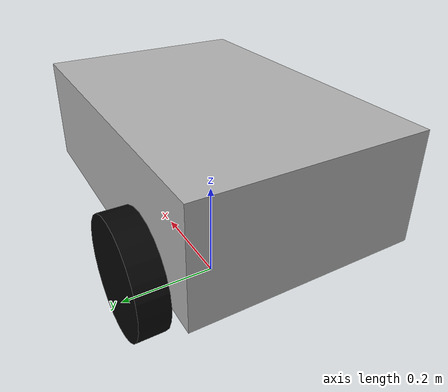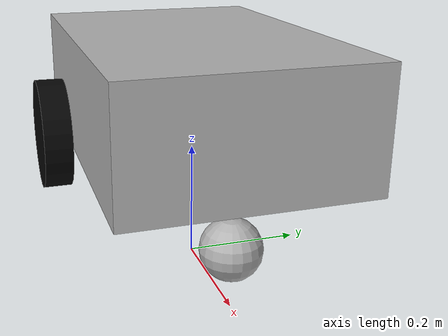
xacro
<?xml version="1.0"?>
<robot xmlns:xacro="http://www.ros.org/wiki/xacro" name="my_robot">

  <!-- include shared properties + mobile-base macro -->
  <xacro:include filename="common_properties.xacro"/>
  <xacro:include filename="mobile_base.xacro"/>

  <!-- instantiate the mobile base defined in mobile_base.xacro -->
  <xacro:mobile_base/>

</robot>

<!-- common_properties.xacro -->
<xacro:properties xmlns:xacro="http://www.ros.org/wiki/xacro">

  <xacro:property name="base_length" value="0.6" />
  <xacro:property name="base_width"  value="0.4" />
  <xacro:property name="base_height" value="0.2" />
  <xacro:property name="wheel_radius" value="0.1" />
  <xacro:property name="wheel_length" value="0.05" />
  <xacro:property name="pi_" value="3.141592653589793" />

  <xacro:property name="base_mass" value="2.0" />
  <xacro:property name="wheel_mass" value="0.2" />
  <xacro:property name="caster_mass" value="0.05" />

  <material name="gray">
    <color rgba="0.7 0.7 0.7 1"/>
  </material>

  <material name="black">
    <color rgba="0.02 0.02 0.02 1"/>
  </material>
</xacro:properties>

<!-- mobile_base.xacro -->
<!-- mobile_base.xacro (wrapped so xacro can parse this file standalone) -->
<xacro:macro_collection xmlns:xacro="http://www.ros.org/wiki/xacro">

  <!-- reusable wheel link macro -->
  <xacro:macro name="wheel_link" params="lname radius length mass mat rpy">
    <link name="${lname}">
      <inertial>
        <xacro:cylinder_inertia m="${mass}" r="${radius}" l="${length}" o_xyz="0 0 0" o_rpy="${pi/2.0} 0 0" />
      </inertial>
      <visual>
        <origin xyz="0 0 0" rpy="1.57 0 0"/>
        <geometry>
          <cylinder length="${length}" radius="${radius}"/>
        </geometry>
        <material name="${mat}"/>
      </visual>
      <collision>
        <origin xyz="0 0 0" rpy="${rpy}"/>
        <geometry>
          <cylinder length="${length}" radius="${radius}"/>
        </geometry>
      </collision>
    </link>
  </xacro:macro>

  <!-- reusable caster link macro -->
  <xacro:macro name="caster_link" params="lname radius mass mat rpy">
    <link name="${lname}">
      <inertial>
        <xacro:sphere_inertia m="${mass}" r="${radius}" o_xyz="0 0 0" o_rpy="0 0 0" />

      </inertial>
      <visual>
        <origin xyz="0 0 0" rpy="${rpy}"/>
        <geometry>
          <sphere radius="${radius}"/>
        </geometry>
        <material name="${mat}"/>
      </visual>
      <collision>
        <origin xyz="0 0 0" rpy="${rpy}"/>
        <geometry>
          <sphere radius="${radius}"/>
        </geometry>
      </collision>
    </link>
  </xacro:macro>

  <!-- generic wheel joint macro -->
  <xacro:macro name="wheel_joint" params="jname parent child xyz rpy axis type='continuous'">
    <joint name="${jname}" type="${type}">
      <parent link="${parent}"/>
      <child  link="${child}"/>
      <origin xyz="${xyz}" rpy="${rpy}"/>
      <axis xyz="${axis}"/>
    </joint>
  </xacro:macro>

  <!-- caster joint (fixed) -->
  <xacro:macro name="caster_joint" params="jname parent child xyz rpy type='fixed'">
    <joint name="${jname}" type="${type}">
      <parent link="${parent}"/>
      <child  link="${child}"/>
      <origin xyz="${xyz}" rpy="${rpy}"/>
    </joint>
  </xacro:macro>

<xacro:macro name="cylinder_inertia" params="m r l o_xyz o_rpy">
<mass value="${m}" />
<origin xyz="${o_xyz}" rpy="${o_rpy}" />
<inertia ixx="${(m/12) * (3*r*r + l*l)}" ixy="0" ixz="0" iyy="${(m/12) * (3*r*r + l*l)}" iyz="0" izz="${(m/2) * (r*r)}"/>
</xacro:macro>

<xacro:macro name="sphere_inertia" params="m r o_xyz o_rpy">
<mass value="${m}" />
<origin xyz="${o_xyz}" rpy="${o_rpy}" />
<inertia ixx="${(2/5) * m * r * r}" ixy="0" ixz="0" iyy="${(2/5) * m * r * r}" iyz="0" izz="${(2/5) * m * r * r}" />
</xacro:macro>

<xacro:macro name="box_inertia" params="m x y z o_xyz o_rpy">
<mass value="${m}" />
<origin xyz="${o_xyz}" rpy="${o_rpy}" />
<inertia ixx="${(m/12) * (z*z + y*y)}" ixy="0" ixz="0" iyy="${(m/12) * (x*x + z*z)}" iyz="0" izz="${(m/12) * (x*x + y*y)}" />
</xacro:macro>
  <!-- composed mobile_base macro (uses the small macros) -->
  <xacro:macro name="mobile_base" params="">

    <!-- footprint (frame at ground) -->
    <link name="base_footprint"/>

    <!-- main base link (visual/collision/inertial) -->
    <link name="base_link">
      <inertial>
        <mass value="${base_mass}"/>
        <origin xyz="0 0 0" rpy="0 0 0"/>
        <inertia ixx="0.02" ixy="0.0" ixz="0.0" iyy="0.02" iyz="0.0" izz="0.02"/>
      </inertial>

      <visual>
        <origin xyz="0 0 ${base_height/2.0}" rpy="0 0 0"/>
        <geometry>
          <box size="${base_length} ${base_width} ${base_height}"/>
        </geometry>
        <material name="gray"/>
      </visual>

      <collision>
        <origin xyz="0 0 ${base_height/2.0}" rpy="0 0 0"/>
        <geometry>
          <box size="${base_length} ${base_width} ${base_height}"/>
        </geometry>
      </collision>
    </link>

    <!-- instantiate wheels/caster via macros -->
    <xacro:wheel_link lname="left_wheel_link"  radius="${wheel_radius}" length="${wheel_length}" mass="${wheel_mass}" mat="black" rpy="0 1.5708 0"/>
    <xacro:wheel_link lname="right_wheel_link" radius="${wheel_radius}" length="${wheel_length}" mass="${wheel_mass}" mat="black" rpy="0 1.5708 0"/>
    <xacro:caster_link lname="caster_link"    radius="${wheel_radius/2.0}" mass="${caster_mass}" mat="gray"  rpy="0 0 0"/>

    <!-- joints (use joint macros) -->
    <xacro:wheel_joint jname="base_left_wheel_joint"  parent="base_link" child="left_wheel_link"  xyz="${-base_length/4.0} ${(base_width + wheel_length)/2.0} 0" rpy="0 0 0" axis="0 1 0"/>
    <xacro:wheel_joint jname="base_right_wheel_joint" parent="base_link" child="right_wheel_link" xyz="${-base_length/4.0} ${-(base_width + wheel_length)/2.0} 0" rpy="0 0 0" axis="0 1 0"/>
    <xacro:caster_joint jname="base_caster_wheel_joint" parent="base_link" child="caster_link" xyz="${base_length/3.0} 0 ${-base_height/2.0}" rpy="0 0 0"/>

    <!-- attach base to the footprint -->
    <joint name="base_joint" type="fixed">
      <parent link="base_footprint"/>
      <child  link="base_link"/>
      <origin xyz="0 0 ${wheel_radius + base_height/2.0}" rpy="0 0 0"/>
    </joint>
  </xacro:macro>

</xacro:macro_collection>
